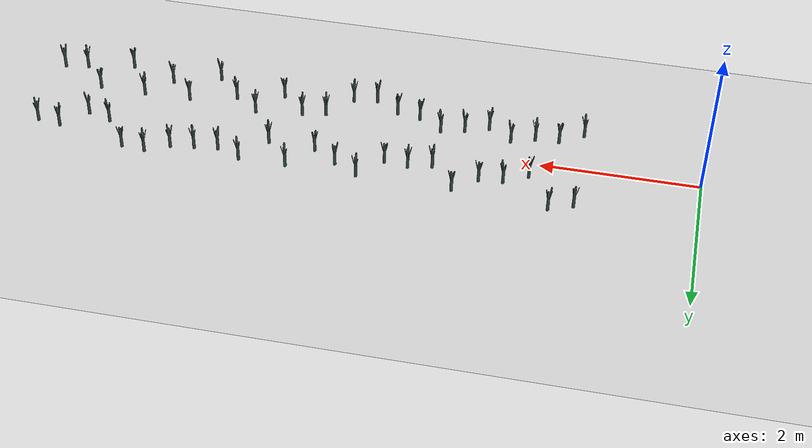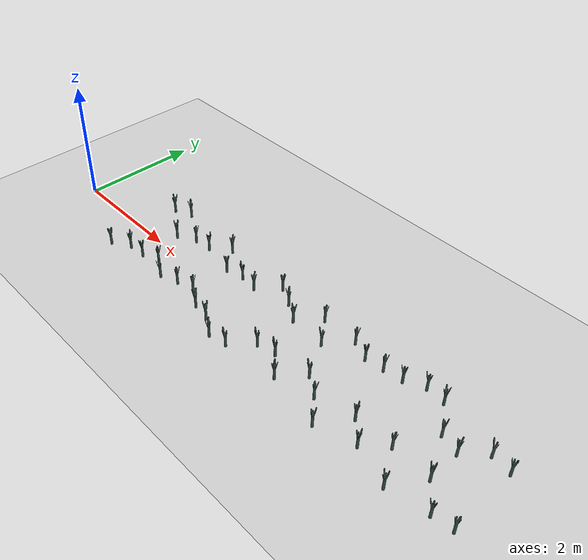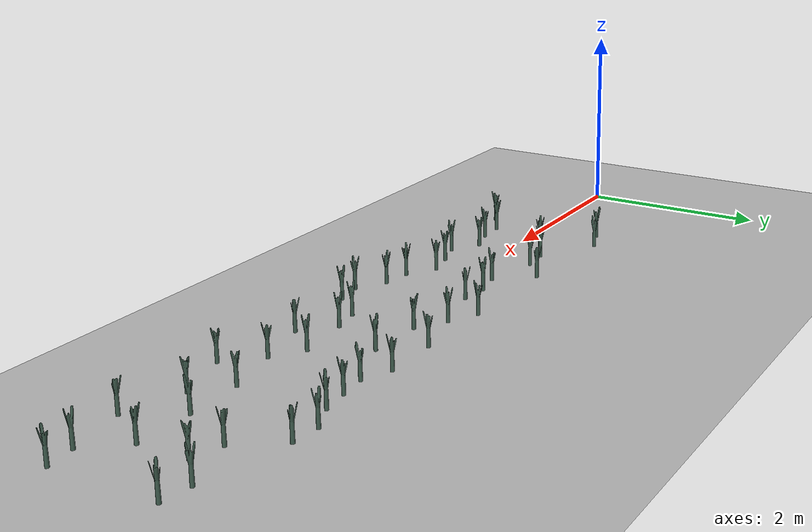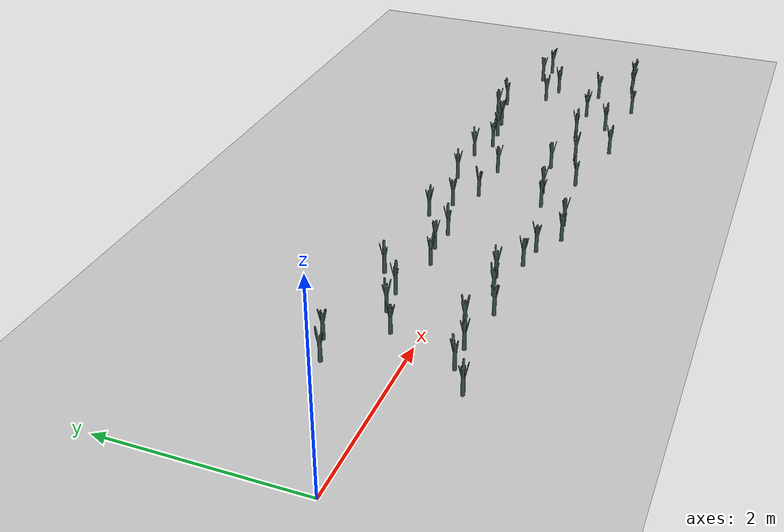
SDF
<sdf version="1.6">
 <world name="default">
  <light name="sun" type="directional">
   <pose>0 0 10 0 -0 0</pose>
   <diffuse>0.5 0.5 0.5 1</diffuse>
   <specular>0.1 0.1 0.1 1</specular>
   <attenuation>
    <range>1000</range>
    <constant>0.9</constant>
    <linear>0.01</linear>
    <quadratic>0.001</quadratic>
   </attenuation>
   <direction>0.9 0.5 -1</direction>
  </light>
  <scene><background>130 200 255 1</background><ambient>130 140 140 1</ambient></scene>
  <include><uri>model://dirt_plane</uri></include>
  <include><uri>model://Leek</uri><pose>1.500000 0.679514 0.15 0 0 7.585785</pose><static>0</static></include>
  <include><uri>model://Leek</uri><pose>1.800000 0.793051 0.15 0 0 140.735350</pose><static>0</static></include>
  <include><uri>model://Leek</uri><pose>2.100000 0.266941 0.15 0 0 121.234726</pose><static>0</static></include>
  <include><uri>model://Leek</uri><pose>2.400000 0.428826 0.15 0 0 74.456674</pose><static>0</static></include>
  <include><uri>model://Leek</uri><pose>2.700000 0.459271 0.15 0 0 37.913665</pose><static>0</static></include>
  <include><uri>model://Leek</uri><pose>3.000000 0.695118 0.15 0 0 38.194496</pose><static>0</static></include>
  <include><uri>model://Leek</uri><pose>3.300000 0.328744 0.15 0 0 10.751944</pose><static>0</static></include>
  <include>
   <uri>model://Leek</uri>
   <pose>3.600000 0.394260 0.15 0 0 -135.157217</pose>
   <static>0</static>
  </include>
  <include><uri>model://Leek</uri><pose>3.900000 0.360565 0.15 0 0 132.399654</pose><static>0</static></include>
  <include>
   <uri>model://Leek</uri>
   <pose>4.200000 0.680723 0.15 0 0 -102.096201</pose>
   <static>0</static>
  </include>
  <include><uri>model://Leek</uri><pose>4.500000 0.521577 0.15 0 0 109.127204</pose><static>0</static></include>
  <include><uri>model://Leek</uri><pose>4.800000 0.326251 0.15 0 0 -55.360685</pose><static>0</static></include>
  <include>
   <uri>model://Leek</uri>
   <pose>5.100000 0.676129 0.15 0 0 -101.816532</pose>
   <static>0</static>
  </include>
  <include>
   <uri>model://Leek</uri>
   <pose>5.400000 0.299137 0.15 0 0 -160.039805</pose>
   <static>0</static>
  </include>
  <include><uri>model://Leek</uri><pose>5.700000 0.678313 0.15 0 0 -63.888213</pose><static>0</static></include>
  <include>
   <uri>model://Leek</uri>
   <pose>6.000000 0.548823 0.15 0 0 -127.467384</pose>
   <static>0</static>
  </include>
  <include><uri>model://Leek</uri><pose>6.300000 0.585556 0.15 0 0 80.574237</pose><static>0</static></include>
  <include><uri>model://Leek</uri><pose>6.600000 0.628408 0.15 0 0 135.773925</pose><static>0</static></include>
  <include><uri>model://Leek</uri><pose>6.900000 0.768797 0.15 0 0 147.930235</pose><static>0</static></include>
  <include>
   <uri>model://Leek</uri>
   <pose>7.200000 0.742265 0.15 0 0 -118.675972</pose>
   <static>0</static>
  </include>
  <include><uri>model://Leek</uri><pose>7.500000 0.312963 0.15 0 0 5.660852</pose><static>0</static></include>
  <include><uri>model://Leek</uri><pose>7.800000 0.222677 0.15 0 0 138.021904</pose><static>0</static></include>
  <include>
   <uri>model://Leek</uri>
   <pose>8.100000 0.520592 0.15 0 0 -110.159099</pose>
   <static>0</static>
  </include>
  <include><uri>model://Leek</uri><pose>8.400000 0.473630 0.15 0 0 -27.561095</pose><static>0</static></include>
  <include>
   <uri>model://Leek</uri>
   <pose>1.510198 -0.625711 0.15 0 0 -45.338336</pose>
   <static>0</static>
  </include>
  <include><uri>model://Leek</uri><pose>1.810198 -0.447943 0.15 0 0 7.082047</pose><static>0</static></include>
  <include><uri>model://Leek</uri><pose>2.110198 -0.430943 0.15 0 0 11.018090</pose><static>0</static></include>
  <include>
   <uri>model://Leek</uri>
   <pose>2.410198 -0.332643 0.15 0 0 143.903276</pose>
   <static>0</static>
  </include>
  <include>
   <uri>model://Leek</uri>
   <pose>2.710198 -0.515541 0.15 0 0 -47.638468</pose>
   <static>0</static>
  </include>
  <include>
   <uri>model://Leek</uri>
   <pose>3.010198 -0.414268 0.15 0 0 -32.037634</pose>
   <static>0</static>
  </include>
  <include>
   <uri>model://Leek</uri>
   <pose>3.310198 -0.344034 0.15 0 0 -32.461772</pose>
   <static>0</static>
  </include>
  <include>
   <uri>model://Leek</uri>
   <pose>3.610198 -0.528210 0.15 0 0 -111.075318</pose>
   <static>0</static>
  </include>
  <include><uri>model://Leek</uri><pose>3.910198 -0.575115 0.15 0 0 -4.483860</pose><static>0</static></include>
  <include>
   <uri>model://Leek</uri>
   <pose>4.210198 -0.757783 0.15 0 0 -54.108350</pose>
   <static>0</static>
  </include>
  <include>
   <uri>model://Leek</uri>
   <pose>4.510198 -0.704989 0.15 0 0 -141.353829</pose>
   <static>0</static>
  </include>
  <include>
   <uri>model://Leek</uri>
   <pose>4.810198 -0.373121 0.15 0 0 -53.376640</pose>
   <static>0</static>
  </include>
  <include><uri>model://Leek</uri><pose>5.110198 -0.311043 0.15 0 0 -9.449465</pose><static>0</static></include>
  <include>
   <uri>model://Leek</uri>
   <pose>5.410198 -0.601748 0.15 0 0 -137.543005</pose>
   <static>0</static>
  </include>
  <include><uri>model://Leek</uri><pose>5.710198 -0.237768 0.15 0 0 84.807802</pose><static>0</static></include>
  <include>
   <uri>model://Leek</uri>
   <pose>6.010198 -0.446869 0.15 0 0 -151.693151</pose>
   <static>0</static>
  </include>
  <include>
   <uri>model://Leek</uri>
   <pose>6.310198 -0.777610 0.15 0 0 -138.540679</pose>
   <static>0</static>
  </include>
  <include>
   <uri>model://Leek</uri>
   <pose>6.610198 -0.304816 0.15 0 0 -169.683796</pose>
   <static>0</static>
  </include>
  <include>
   <uri>model://Leek</uri>
   <pose>6.910198 -0.591643 0.15 0 0 -144.678163</pose>
   <static>0</static>
  </include>
  <include>
   <uri>model://Leek</uri>
   <pose>7.210198 -0.288082 0.15 0 0 -26.720780</pose>
   <static>0</static>
  </include>
  <include>
   <uri>model://Leek</uri>
   <pose>7.510198 -0.790408 0.15 0 0 170.694008</pose>
   <static>0</static>
  </include>
  <include>
   <uri>model://Leek</uri>
   <pose>7.810198 -0.301865 0.15 0 0 -118.173477</pose>
   <static>0</static>
  </include>
  <include>
   <uri>model://Leek</uri>
   <pose>8.110198 -0.670913 0.15 0 0 -178.734276</pose>
   <static>0</static>
  </include>
  <include>
   <uri>model://Leek</uri>
   <pose>8.410198 -0.627642 0.15 0 0 136.255333</pose>
   <static>0</static>
  </include>
 </world>
</sdf>

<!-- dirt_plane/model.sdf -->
<sdf version="1.4">
<model name="dirt_plane">
  <static>true</static>
    <link name="link">
      <collision name="collision">
        <geometry>
          <plane>
            <normal>0 0 1</normal>
            <size>100 100</size>
          </plane>
        </geometry>
        <surface>
          <friction>
            <ode>
              <mu>0.99</mu>
              <mu2>0.99</mu2>
            </ode>
          </friction>
        </surface>
      </collision>
      <visual name="visual">
        <cast_shadows>false</cast_shadows>
        <geometry>
          <plane>
            <normal>0 0 1</normal>
            <size>100 100</size>
          </plane>
        </geometry>
        <material>
          <script>
            <uri>model://ground_plane/materials/scripts/my_ground_plane.material</uri>
            <uri>model://ground_plane/materials/textures</uri>
            <name>my_ground_plane/Dirt</name>
          </script>
        </material>
      </visual>
    </link>
  </model>
</sdf>

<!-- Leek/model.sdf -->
<sdf version='1.6'>
  <model name='Leek'>
    <link name='link'>
      <pose frame=''>0 0 0 0 -0 0</pose>
      <inertial>
        <mass>1</mass>
        <inertia>
          <ixx>0.145833</ixx>
          <ixy>0</ixy>
          <ixz>0</ixz>
          <iyy>0.145833</iyy>
          <iyz>0</iyz>
          <izz>0.125</izz>
        </inertia>
        <pose frame=''>0 0 0 0 -0 0</pose>
      </inertial>
      <self_collide>0</self_collide>
      <kinematic>0</kinematic>
      <gravity>1</gravity>
      <visual name='visual'>
        <geometry>
          <mesh>
            <uri>model://Leek/Poireau.dae</uri>
            <scale>1 1 1</scale>
          </mesh>
        </geometry>
        <material>
          <script>
            <name>Gazebo/Grey</name>
            <uri>file://media/materials/scripts/gazebo.material</uri>
          </script>
          <ambient>0.3 0.6 0.5 0</ambient>
          <diffuse>0.2 0.3 0.25 0</diffuse>
          <specular>0 0 0 1</specular>
          <emissive>0 0 0 1</emissive>
          <shader type='vertex'>
            <normal_map>__default__</normal_map>
          </shader>
        </material>
        <pose frame=''>0 0 -0.08 0 -0 0</pose>
        <cast_shadows>1</cast_shadows>
        <transparency>0</transparency>
      </visual>
      <collision name='collision'>
        <laser_retro>0</laser_retro>
        <max_contacts>10</max_contacts>
        <pose frame=''>0 0 0 0 -0 0</pose>
        <geometry>
          <cylinder>
            <radius>0.02</radius>
            <length>0.25</length>
          </cylinder>
        </geometry>
        <surface>
          <friction>
            <ode>
              <mu>1</mu>
              <mu2>1</mu2>
              <fdir1>0 0 0</fdir1>
              <slip1>0</slip1>
              <slip2>0</slip2>
            </ode>
            <torsional>
              <coefficient>1</coefficient>
              <patch_radius>0</patch_radius>
              <surface_radius>0</surface_radius>
              <use_patch_radius>1</use_patch_radius>
              <ode>
                <slip>0</slip>
              </ode>
            </torsional>
          </friction>
          <bounce>
            <restitution_coefficient>0</restitution_coefficient>
            <threshold>1e+06</threshold>
          </bounce>
          <contact>
            <collide_without_contact>0</collide_without_contact>
            <collide_without_contact_bitmask>1</collide_without_contact_bitmask>
            <collide_bitmask>1</collide_bitmask>
            <ode>
              <soft_cfm>0</soft_cfm>
              <soft_erp>0.2</soft_erp>
              <kp>1e+13</kp>
              <kd>1</kd>
              <max_vel>0.01</max_vel>
              <min_depth>0</min_depth>
            </ode>
            <bullet>
              <split_impulse>1</split_impulse>
              <split_impulse_penetration_threshold>-0.01</split_impulse_penetration_threshold>
              <soft_cfm>0</soft_cfm>
              <soft_erp>0.2</soft_erp>
              <kp>1e+13</kp>
              <kd>1</kd>
            </bullet>
          </contact>
        </surface>
      </collision>
    </link>
    <static>0</static>
    <allow_auto_disable>1</allow_auto_disable>
  </model>
</sdf>
